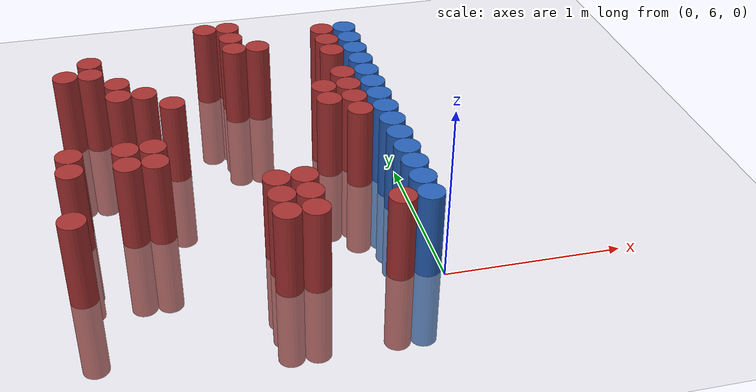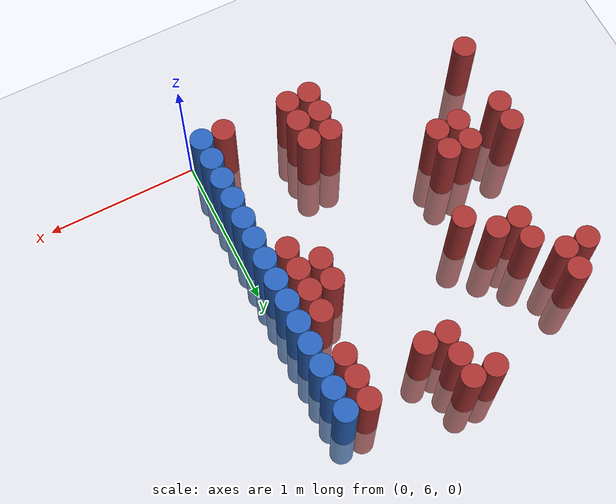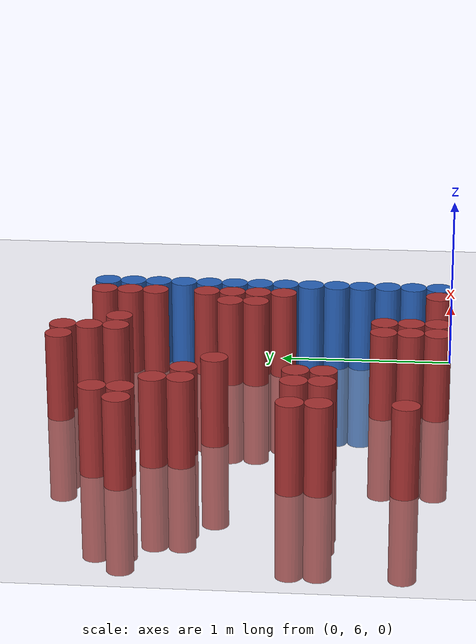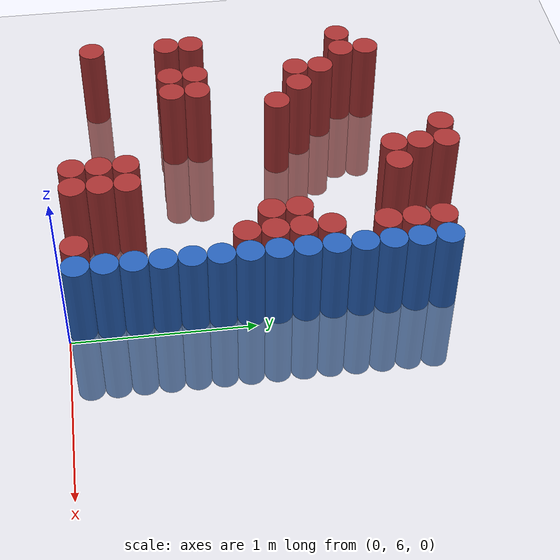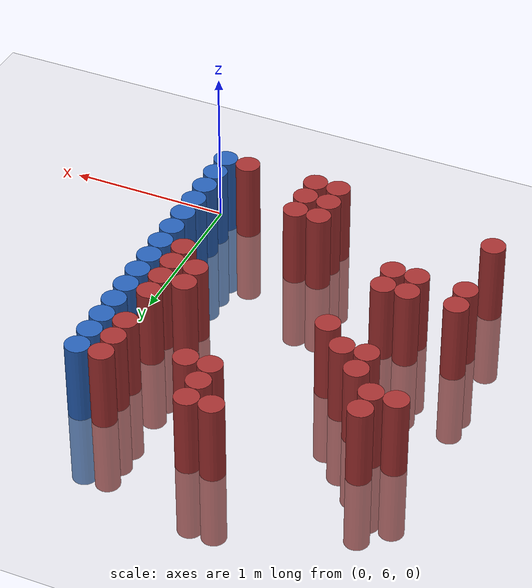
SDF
<sdf version="1.6">
 <world name="default">
  <model name="ground_plane">
   <static>1</static>
   <link name="link">
    <collision name="collision">
     <geometry><plane><normal>0 0 1</normal><size>100 100</size></plane></geometry>
     <surface><friction><ode><mu>100</mu><mu2>50</mu2></ode></friction></surface>
    </collision>
    <visual name="visual">
     <cast_shadows>0</cast_shadows>
     <geometry><plane><normal>0 0 1</normal><size>100 100</size></plane></geometry>
     <material>
      <script><uri>file://media/materials/scripts/gazebo.material</uri><name>Gazebo/Grey</name></script>
     </material>
    </visual>
   </link>
  </model>
  <model name="unit_cylinder_217">
   <static>1</static>
   <pose>-1.875000 6.225000 0.000000 0.000000 0.000000 0.000000</pose>
   <link name="link">
    <inertial>
     <mass>1</mass>
     <inertia><ixx>0.145833</ixx><ixy>0</ixy><ixz>0</ixz><iyy>0.145833</iyy><iyz>0</iyz><izz>0.125</izz></inertia>
    </inertial>
    <collision name="collision">
     <geometry><cylinder><radius>0.075000</radius><length>1</length></cylinder></geometry>
    </collision>
    <visual name="visual">
     <geometry><cylinder><radius>0.075000</radius><length>1</length></cylinder></geometry>
     <material>
      <ambient>0.648000 0.192000 0.192000 1</ambient>
      <diffuse>0.648000 0.192000 0.192000 1</diffuse>
     </material>
     <material>
      <script><name>Gazebo/Grey</name><uri>file://media/materials/scripts/gazebo.material</uri></script>
     </material>
    </visual>
   </link>
  </model>
  <model name="unit_cylinder_218">
   <static>1</static>
   <pose>-1.875000 6.675000 0.000000 0.000000 0.000000 0.000000</pose>
   <link name="link">
    <inertial>
     <mass>1</mass>
     <inertia><ixx>0.145833</ixx><ixy>0</ixy><ixz>0</ixz><iyy>0.145833</iyy><iyz>0</iyz><izz>0.125</izz></inertia>
    </inertial>
    <collision name="collision">
     <geometry><cylinder><radius>0.075000</radius><length>1</length></cylinder></geometry>
    </collision>
    <visual name="visual">
     <geometry><cylinder><radius>0.075000</radius><length>1</length></cylinder></geometry>
     <material>
      <ambient>0.648000 0.192000 0.192000 1</ambient>
      <diffuse>0.648000 0.192000 0.192000 1</diffuse>
     </material>
     <material>
      <script><name>Gazebo/Grey</name><uri>file://media/materials/scripts/gazebo.material</uri></script>
     </material>
    </visual>
   </link>
  </model>
  <model name="unit_cylinder_219">
   <static>1</static>
   <pose>-1.875000 6.825000 0.000000 0.000000 0.000000 0.000000</pose>
   <link name="link">
    <inertial>
     <mass>1</mass>
     <inertia><ixx>0.145833</ixx><ixy>0</ixy><ixz>0</ixz><iyy>0.145833</iyy><iyz>0</iyz><izz>0.125</izz></inertia>
    </inertial>
    <collision name="collision">
     <geometry><cylinder><radius>0.075000</radius><length>1</length></cylinder></geometry>
    </collision>
    <visual name="visual">
     <geometry><cylinder><radius>0.075000</radius><length>1</length></cylinder></geometry>
     <material>
      <ambient>0.648000 0.192000 0.192000 1</ambient>
      <diffuse>0.648000 0.192000 0.192000 1</diffuse>
     </material>
     <material>
      <script><name>Gazebo/Grey</name><uri>file://media/materials/scripts/gazebo.material</uri></script>
     </material>
    </visual>
   </link>
  </model>
  <model name="unit_cylinder_220">
   <static>1</static>
   <pose>-1.875000 7.725000 0.000000 0.000000 0.000000 0.000000</pose>
   <link name="link">
    <inertial>
     <mass>1</mass>
     <inertia><ixx>0.145833</ixx><ixy>0</ixy><ixz>0</ixz><iyy>0.145833</iyy><iyz>0</iyz><izz>0.125</izz></inertia>
    </inertial>
    <collision name="collision">
     <geometry><cylinder><radius>0.075000</radius><length>1</length></cylinder></geometry>
    </collision>
    <visual name="visual">
     <geometry><cylinder><radius>0.075000</radius><length>1</length></cylinder></geometry>
     <material>
      <ambient>0.648000 0.192000 0.192000 1</ambient>
      <diffuse>0.648000 0.192000 0.192000 1</diffuse>
     </material>
     <material>
      <script><name>Gazebo/Grey</name><uri>file://media/materials/scripts/gazebo.material</uri></script>
     </material>
    </visual>
   </link>
  </model>
  <model name="unit_cylinder_227">
   <static>1</static>
   <pose>-1.725000 7.725000 0.000000 0.000000 0.000000 0.000000</pose>
   <link name="link">
    <inertial>
     <mass>1</mass>
     <inertia><ixx>0.145833</ixx><ixy>0</ixy><ixz>0</ixz><iyy>0.145833</iyy><iyz>0</iyz><izz>0.125</izz></inertia>
    </inertial>
    <collision name="collision">
     <geometry><cylinder><radius>0.075000</radius><length>1</length></cylinder></geometry>
    </collision>
    <visual name="visual">
     <geometry><cylinder><radius>0.075000</radius><length>1</length></cylinder></geometry>
     <material>
      <ambient>0.648000 0.192000 0.192000 1</ambient>
      <diffuse>0.648000 0.192000 0.192000 1</diffuse>
     </material>
     <material>
      <script><name>Gazebo/Grey</name><uri>file://media/materials/scripts/gazebo.material</uri></script>
     </material>
    </visual>
   </link>
  </model>
  <model name="unit_cylinder_228">
   <static>1</static>
   <pose>-1.725000 7.875000 0.000000 0.000000 0.000000 0.000000</pose>
   <link name="link">
    <inertial>
     <mass>1</mass>
     <inertia><ixx>0.145833</ixx><ixy>0</ixy><ixz>0</ixz><iyy>0.145833</iyy><iyz>0</iyz><izz>0.125</izz></inertia>
    </inertial>
    <collision name="collision">
     <geometry><cylinder><radius>0.075000</radius><length>1</length></cylinder></geometry>
    </collision>
    <visual name="visual">
     <geometry><cylinder><radius>0.075000</radius><length>1</length></cylinder></geometry>
     <material>
      <ambient>0.648000 0.192000 0.192000 1</ambient>
      <diffuse>0.648000 0.192000 0.192000 1</diffuse>
     </material>
     <material>
      <script><name>Gazebo/Grey</name><uri>file://media/materials/scripts/gazebo.material</uri></script>
     </material>
    </visual>
   </link>
  </model>
  <model name="unit_cylinder_238">
   <static>1</static>
   <pose>-1.575000 6.675000 0.000000 0.000000 0.000000 0.000000</pose>
   <link name="link">
    <inertial>
     <mass>1</mass>
     <inertia><ixx>0.145833</ixx><ixy>0</ixy><ixz>0</ixz><iyy>0.145833</iyy><iyz>0</iyz><izz>0.125</izz></inertia>
    </inertial>
    <collision name="collision">
     <geometry><cylinder><radius>0.075000</radius><length>1</length></cylinder></geometry>
    </collision>
    <visual name="visual">
     <geometry><cylinder><radius>0.075000</radius><length>1</length></cylinder></geometry>
     <material>
      <ambient>0.648000 0.192000 0.192000 1</ambient>
      <diffuse>0.648000 0.192000 0.192000 1</diffuse>
     </material>
     <material>
      <script><name>Gazebo/Grey</name><uri>file://media/materials/scripts/gazebo.material</uri></script>
     </material>
    </visual>
   </link>
  </model>
  <model name="unit_cylinder_239">
   <static>1</static>
   <pose>-1.575000 6.825000 0.000000 0.000000 0.000000 0.000000</pose>
   <link name="link">
    <inertial>
     <mass>1</mass>
     <inertia><ixx>0.145833</ixx><ixy>0</ixy><ixz>0</ixz><iyy>0.145833</iyy><iyz>0</iyz><izz>0.125</izz></inertia>
    </inertial>
    <collision name="collision">
     <geometry><cylinder><radius>0.075000</radius><length>1</length></cylinder></geometry>
    </collision>
    <visual name="visual">
     <geometry><cylinder><radius>0.075000</radius><length>1</length></cylinder></geometry>
     <material>
      <ambient>0.648000 0.192000 0.192000 1</ambient>
      <diffuse>0.648000 0.192000 0.192000 1</diffuse>
     </material>
     <material>
      <script><name>Gazebo/Grey</name><uri>file://media/materials/scripts/gazebo.material</uri></script>
     </material>
    </visual>
   </link>
  </model>
  <model name="unit_cylinder_240">
   <static>1</static>
   <pose>-1.575000 7.425000 0.000000 0.000000 0.000000 0.000000</pose>
   <link name="link">
    <inertial>
     <mass>1</mass>
     <inertia><ixx>0.145833</ixx><ixy>0</ixy><ixz>0</ixz><iyy>0.145833</iyy><iyz>0</iyz><izz>0.125</izz></inertia>
    </inertial>
    <collision name="collision">
     <geometry><cylinder><radius>0.075000</radius><length>1</length></cylinder></geometry>
    </collision>
    <visual name="visual">
     <geometry><cylinder><radius>0.075000</radius><length>1</length></cylinder></geometry>
     <material>
      <ambient>0.648000 0.192000 0.192000 1</ambient>
      <diffuse>0.648000 0.192000 0.192000 1</diffuse>
     </material>
     <material>
      <script><name>Gazebo/Grey</name><uri>file://media/materials/scripts/gazebo.material</uri></script>
     </material>
    </visual>
   </link>
  </model>
  <model name="unit_cylinder_241">
   <static>1</static>
   <pose>-1.575000 7.575000 0.000000 0.000000 0.000000 0.000000</pose>
   <link name="link">
    <inertial>
     <mass>1</mass>
     <inertia><ixx>0.145833</ixx><ixy>0</ixy><ixz>0</ixz><iyy>0.145833</iyy><iyz>0</iyz><izz>0.125</izz></inertia>
    </inertial>
    <collision name="collision">
     <geometry><cylinder><radius>0.075000</radius><length>1</length></cylinder></geometry>
    </collision>
    <visual name="visual">
     <geometry><cylinder><radius>0.075000</radius><length>1</length></cylinder></geometry>
     <material>
      <ambient>0.648000 0.192000 0.192000 1</ambient>
      <diffuse>0.648000 0.192000 0.192000 1</diffuse>
     </material>
     <material>
      <script><name>Gazebo/Grey</name><uri>file://media/materials/scripts/gazebo.material</uri></script>
     </material>
    </visual>
   </link>
  </model>
  <model name="unit_cylinder_245">
   <static>1</static>
   <pose>-1.425000 6.675000 0.000000 0.000000 0.000000 0.000000</pose>
   <link name="link">
    <inertial>
     <mass>1</mass>
     <inertia><ixx>0.145833</ixx><ixy>0</ixy><ixz>0</ixz><iyy>0.145833</iyy><iyz>0</iyz><izz>0.125</izz></inertia>
    </inertial>
    <collision name="collision">
     <geometry><cylinder><radius>0.075000</radius><length>1</length></cylinder></geometry>
    </collision>
    <visual name="visual">
     <geometry><cylinder><radius>0.075000</radius><length>1</length></cylinder></geometry>
     <material>
      <ambient>0.648000 0.192000 0.192000 1</ambient>
      <diffuse>0.648000 0.192000 0.192000 1</diffuse>
     </material>
     <material>
      <script><name>Gazebo/Grey</name><uri>file://media/materials/scripts/gazebo.material</uri></script>
     </material>
    </visual>
   </link>
  </model>
  <model name="unit_cylinder_246">
   <static>1</static>
   <pose>-1.425000 6.825000 0.000000 0.000000 0.000000 0.000000</pose>
   <link name="link">
    <inertial>
     <mass>1</mass>
     <inertia><ixx>0.145833</ixx><ixy>0</ixy><ixz>0</ixz><iyy>0.145833</iyy><iyz>0</iyz><izz>0.125</izz></inertia>
    </inertial>
    <collision name="collision">
     <geometry><cylinder><radius>0.075000</radius><length>1</length></cylinder></geometry>
    </collision>
    <visual name="visual">
     <geometry><cylinder><radius>0.075000</radius><length>1</length></cylinder></geometry>
     <material>
      <ambient>0.648000 0.192000 0.192000 1</ambient>
      <diffuse>0.648000 0.192000 0.192000 1</diffuse>
     </material>
     <material>
      <script><name>Gazebo/Grey</name><uri>file://media/materials/scripts/gazebo.material</uri></script>
     </material>
    </visual>
   </link>
  </model>
  <model name="unit_cylinder_247">
   <static>1</static>
   <pose>-1.425000 7.425000 0.000000 0.000000 0.000000 0.000000</pose>
   <link name="link">
    <inertial>
     <mass>1</mass>
     <inertia><ixx>0.145833</ixx><ixy>0</ixy><ixz>0</ixz><iyy>0.145833</iyy><iyz>0</iyz><izz>0.125</izz></inertia>
    </inertial>
    <collision name="collision">
     <geometry><cylinder><radius>0.075000</radius><length>1</length></cylinder></geometry>
    </collision>
    <visual name="visual">
     <geometry><cylinder><radius>0.075000</radius><length>1</length></cylinder></geometry>
     <material>
      <ambient>0.648000 0.192000 0.192000 1</ambient>
      <diffuse>0.648000 0.192000 0.192000 1</diffuse>
     </material>
     <material>
      <script><name>Gazebo/Grey</name><uri>file://media/materials/scripts/gazebo.material</uri></script>
     </material>
    </visual>
   </link>
  </model>
  <model name="unit_cylinder_252">
   <static>1</static>
   <pose>-1.275000 7.275000 0.000000 0.000000 0.000000 0.000000</pose>
   <link name="link">
    <inertial>
     <mass>1</mass>
     <inertia><ixx>0.145833</ixx><ixy>0</ixy><ixz>0</ixz><iyy>0.145833</iyy><iyz>0</iyz><izz>0.125</izz></inertia>
    </inertial>
    <collision name="collision">
     <geometry><cylinder><radius>0.075000</radius><length>1</length></cylinder></geometry>
    </collision>
    <visual name="visual">
     <geometry><cylinder><radius>0.075000</radius><length>1</length></cylinder></geometry>
     <material>
      <ambient>0.648000 0.192000 0.192000 1</ambient>
      <diffuse>0.648000 0.192000 0.192000 1</diffuse>
     </material>
     <material>
      <script><name>Gazebo/Grey</name><uri>file://media/materials/scripts/gazebo.material</uri></script>
     </material>
    </visual>
   </link>
  </model>
  <model name="unit_cylinder_263">
   <static>1</static>
   <pose>-0.975000 8.175000 0.000000 0.000000 0.000000 0.000000</pose>
   <link name="link">
    <inertial>
     <mass>1</mass>
     <inertia><ixx>0.145833</ixx><ixy>0</ixy><ixz>0</ixz><iyy>0.145833</iyy><iyz>0</iyz><izz>0.125</izz></inertia>
    </inertial>
    <collision name="collision">
     <geometry><cylinder><radius>0.075000</radius><length>1</length></cylinder></geometry>
    </collision>
    <visual name="visual">
     <geometry><cylinder><radius>0.075000</radius><length>1</length></cylinder></geometry>
     <material>
      <ambient>0.648000 0.192000 0.192000 1</ambient>
      <diffuse>0.648000 0.192000 0.192000 1</diffuse>
     </material>
     <material>
      <script><name>Gazebo/Grey</name><uri>file://media/materials/scripts/gazebo.material</uri></script>
     </material>
    </visual>
   </link>
  </model>
  <model name="unit_cylinder_268">
   <static>1</static>
   <pose>-0.825000 6.075000 0.000000 0.000000 0.000000 0.000000</pose>
   <link name="link">
    <inertial>
     <mass>1</mass>
     <inertia><ixx>0.145833</ixx><ixy>0</ixy><ixz>0</ixz><iyy>0.145833</iyy><iyz>0</iyz><izz>0.125</izz></inertia>
    </inertial>
    <collision name="collision">
     <geometry><cylinder><radius>0.075000</radius><length>1</length></cylinder></geometry>
    </collision>
    <visual name="visual">
     <geometry><cylinder><radius>0.075000</radius><length>1</length></cylinder></geometry>
     <material>
      <ambient>0.648000 0.192000 0.192000 1</ambient>
      <diffuse>0.648000 0.192000 0.192000 1</diffuse>
     </material>
     <material>
      <script><name>Gazebo/Grey</name><uri>file://media/materials/scripts/gazebo.material</uri></script>
     </material>
    </visual>
   </link>
  </model>
  <model name="unit_cylinder_269">
   <static>1</static>
   <pose>-0.825000 6.225000 0.000000 0.000000 0.000000 0.000000</pose>
   <link name="link">
    <inertial>
     <mass>1</mass>
     <inertia><ixx>0.145833</ixx><ixy>0</ixy><ixz>0</ixz><iyy>0.145833</iyy><iyz>0</iyz><izz>0.125</izz></inertia>
    </inertial>
    <collision name="collision">
     <geometry><cylinder><radius>0.075000</radius><length>1</length></cylinder></geometry>
    </collision>
    <visual name="visual">
     <geometry><cylinder><radius>0.075000</radius><length>1</length></cylinder></geometry>
     <material>
      <ambient>0.648000 0.192000 0.192000 1</ambient>
      <diffuse>0.648000 0.192000 0.192000 1</diffuse>
     </material>
     <material>
      <script><name>Gazebo/Grey</name><uri>file://media/materials/scripts/gazebo.material</uri></script>
     </material>
    </visual>
   </link>
  </model>
  <model name="unit_cylinder_270">
   <static>1</static>
   <pose>-0.825000 6.375000 0.000000 0.000000 0.000000 0.000000</pose>
   <link name="link">
    <inertial>
     <mass>1</mass>
     <inertia><ixx>0.145833</ixx><ixy>0</ixy><ixz>0</ixz><iyy>0.145833</iyy><iyz>0</iyz><izz>0.125</izz></inertia>
    </inertial>
    <collision name="collision">
     <geometry><cylinder><radius>0.075000</radius><length>1</length></cylinder></geometry>
    </collision>
    <visual name="visual">
     <geometry><cylinder><radius>0.075000</radius><length>1</length></cylinder></geometry>
     <material>
      <ambient>0.648000 0.192000 0.192000 1</ambient>
      <diffuse>0.648000 0.192000 0.192000 1</diffuse>
     </material>
     <material>
      <script><name>Gazebo/Grey</name><uri>file://media/materials/scripts/gazebo.material</uri></script>
     </material>
    </visual>
   </link>
  </model>
  <model name="unit_cylinder_271">
   <static>1</static>
   <pose>-0.825000 7.875000 0.000000 0.000000 0.000000 0.000000</pose>
   <link name="link">
    <inertial>
     <mass>1</mass>
     <inertia><ixx>0.145833</ixx><ixy>0</ixy><ixz>0</ixz><iyy>0.145833</iyy><iyz>0</iyz><izz>0.125</izz></inertia>
    </inertial>
    <collision name="collision">
     <geometry><cylinder><radius>0.075000</radius><length>1</length></cylinder></geometry>
    </collision>
    <visual name="visual">
     <geometry><cylinder><radius>0.075000</radius><length>1</length></cylinder></geometry>
     <material>
      <ambient>0.648000 0.192000 0.192000 1</ambient>
      <diffuse>0.648000 0.192000 0.192000 1</diffuse>
     </material>
     <material>
      <script><name>Gazebo/Grey</name><uri>file://media/materials/scripts/gazebo.material</uri></script>
     </material>
    </visual>
   </link>
  </model>
  <model name="unit_cylinder_272">
   <static>1</static>
   <pose>-0.825000 8.025000 0.000000 0.000000 0.000000 0.000000</pose>
   <link name="link">
    <inertial>
     <mass>1</mass>
     <inertia><ixx>0.145833</ixx><ixy>0</ixy><ixz>0</ixz><iyy>0.145833</iyy><iyz>0</iyz><izz>0.125</izz></inertia>
    </inertial>
    <collision name="collision">
     <geometry><cylinder><radius>0.075000</radius><length>1</length></cylinder></geometry>
    </collision>
    <visual name="visual">
     <geometry><cylinder><radius>0.075000</radius><length>1</length></cylinder></geometry>
     <material>
      <ambient>0.648000 0.192000 0.192000 1</ambient>
      <diffuse>0.648000 0.192000 0.192000 1</diffuse>
     </material>
     <material>
      <script><name>Gazebo/Grey</name><uri>file://media/materials/scripts/gazebo.material</uri></script>
     </material>
    </visual>
   </link>
  </model>
  <model name="unit_cylinder_273">
   <static>1</static>
   <pose>-0.825000 8.175000 0.000000 0.000000 0.000000 0.000000</pose>
   <link name="link">
    <inertial>
     <mass>1</mass>
     <inertia><ixx>0.145833</ixx><ixy>0</ixy><ixz>0</ixz><iyy>0.145833</iyy><iyz>0</iyz><izz>0.125</izz></inertia>
    </inertial>
    <collision name="collision">
     <geometry><cylinder><radius>0.075000</radius><length>1</length></cylinder></geometry>
    </collision>
    <visual name="visual">
     <geometry><cylinder><radius>0.075000</radius><length>1</length></cylinder></geometry>
     <material>
      <ambient>0.648000 0.192000 0.192000 1</ambient>
      <diffuse>0.648000 0.192000 0.192000 1</diffuse>
     </material>
     <material>
      <script><name>Gazebo/Grey</name><uri>file://media/materials/scripts/gazebo.material</uri></script>
     </material>
    </visual>
   </link>
  </model>
  <model name="unit_cylinder_277">
   <static>1</static>
   <pose>-0.675000 6.075000 0.000000 0.000000 0.000000 0.000000</pose>
   <link name="link">
    <inertial>
     <mass>1</mass>
     <inertia><ixx>0.145833</ixx><ixy>0</ixy><ixz>0</ixz><iyy>0.145833</iyy><iyz>0</iyz><izz>0.125</izz></inertia>
    </inertial>
    <collision name="collision">
     <geometry><cylinder><radius>0.075000</radius><length>1</length></cylinder></geometry>
    </collision>
    <visual name="visual">
     <geometry><cylinder><radius>0.075000</radius><length>1</length></cylinder></geometry>
     <material>
      <ambient>0.648000 0.192000 0.192000 1</ambient>
      <diffuse>0.648000 0.192000 0.192000 1</diffuse>
     </material>
     <material>
      <script><name>Gazebo/Grey</name><uri>file://media/materials/scripts/gazebo.material</uri></script>
     </material>
    </visual>
   </link>
  </model>
  <model name="unit_cylinder_278">
   <static>1</static>
   <pose>-0.675000 6.225000 0.000000 0.000000 0.000000 0.000000</pose>
   <link name="link">
    <inertial>
     <mass>1</mass>
     <inertia><ixx>0.145833</ixx><ixy>0</ixy><ixz>0</ixz><iyy>0.145833</iyy><iyz>0</iyz><izz>0.125</izz></inertia>
    </inertial>
    <collision name="collision">
     <geometry><cylinder><radius>0.075000</radius><length>1</length></cylinder></geometry>
    </collision>
    <visual name="visual">
     <geometry><cylinder><radius>0.075000</radius><length>1</length></cylinder></geometry>
     <material>
      <ambient>0.648000 0.192000 0.192000 1</ambient>
      <diffuse>0.648000 0.192000 0.192000 1</diffuse>
     </material>
     <material>
      <script><name>Gazebo/Grey</name><uri>file://media/materials/scripts/gazebo.material</uri></script>
     </material>
    </visual>
   </link>
  </model>
  <model name="unit_cylinder_279">
   <static>1</static>
   <pose>-0.675000 6.375000 0.000000 0.000000 0.000000 0.000000</pose>
   <link name="link">
    <inertial>
     <mass>1</mass>
     <inertia><ixx>0.145833</ixx><ixy>0</ixy><ixz>0</ixz><iyy>0.145833</iyy><iyz>0</iyz><izz>0.125</izz></inertia>
    </inertial>
    <collision name="collision">
     <geometry><cylinder><radius>0.075000</radius><length>1</length></cylinder></geometry>
    </collision>
    <visual name="visual">
     <geometry><cylinder><radius>0.075000</radius><length>1</length></cylinder></geometry>
     <material>
      <ambient>0.648000 0.192000 0.192000 1</ambient>
      <diffuse>0.648000 0.192000 0.192000 1</diffuse>
     </material>
     <material>
      <script><name>Gazebo/Grey</name><uri>file://media/materials/scripts/gazebo.material</uri></script>
     </material>
    </visual>
   </link>
  </model>
  <model name="unit_cylinder_280">
   <static>1</static>
   <pose>-0.675000 7.875000 0.000000 0.000000 0.000000 0.000000</pose>
   <link name="link">
    <inertial>
     <mass>1</mass>
     <inertia><ixx>0.145833</ixx><ixy>0</ixy><ixz>0</ixz><iyy>0.145833</iyy><iyz>0</iyz><izz>0.125</izz></inertia>
    </inertial>
    <collision name="collision">
     <geometry><cylinder><radius>0.075000</radius><length>1</length></cylinder></geometry>
    </collision>
    <visual name="visual">
     <geometry><cylinder><radius>0.075000</radius><length>1</length></cylinder></geometry>
     <material>
      <ambient>0.648000 0.192000 0.192000 1</ambient>
      <diffuse>0.648000 0.192000 0.192000 1</diffuse>
     </material>
     <material>
      <script><name>Gazebo/Grey</name><uri>file://media/materials/scripts/gazebo.material</uri></script>
     </material>
    </visual>
   </link>
  </model>
  <model name="unit_cylinder_284">
   <static>1</static>
   <pose>-0.375000 7.125000 0.000000 0.000000 0.000000 0.000000</pose>
   <link name="link">
    <inertial>
     <mass>1</mass>
     <inertia><ixx>0.145833</ixx><ixy>0</ixy><ixz>0</ixz><iyy>0.145833</iyy><iyz>0</iyz><izz>0.125</izz></inertia>
    </inertial>
    <collision name="collision">
     <geometry><cylinder><radius>0.075000</radius><length>1</length></cylinder></geometry>
    </collision>
    <visual name="visual">
     <geometry><cylinder><radius>0.075000</radius><length>1</length></cylinder></geometry>
     <material>
      <ambient>0.648000 0.192000 0.192000 1</ambient>
      <diffuse>0.648000 0.192000 0.192000 1</diffuse>
     </material>
     <material>
      <script><name>Gazebo/Grey</name><uri>file://media/materials/scripts/gazebo.material</uri></script>
     </material>
    </visual>
   </link>
  </model>
  <model name="unit_cylinder_285">
   <static>1</static>
   <pose>-0.375000 7.275000 0.000000 0.000000 0.000000 0.000000</pose>
   <link name="link">
    <inertial>
     <mass>1</mass>
     <inertia><ixx>0.145833</ixx><ixy>0</ixy><ixz>0</ixz><iyy>0.145833</iyy><iyz>0</iyz><izz>0.125</izz></inertia>
    </inertial>
    <collision name="collision">
     <geometry><cylinder><radius>0.075000</radius><length>1</length></cylinder></geometry>
    </collision>
    <visual name="visual">
     <geometry><cylinder><radius>0.075000</radius><length>1</length></cylinder></geometry>
     <material>
      <ambient>0.648000 0.192000 0.192000 1</ambient>
      <diffuse>0.648000 0.192000 0.192000 1</diffuse>
     </material>
     <material>
      <script><name>Gazebo/Grey</name><uri>file://media/materials/scripts/gazebo.material</uri></script>
     </material>
    </visual>
   </link>
  </model>
  <model name="unit_cylinder_296">
   <static>1</static>
   <pose>-0.225000 6.075000 0.000000 0.000000 0.000000 0.000000</pose>
   <link name="link">
    <inertial>
     <mass>1</mass>
     <inertia><ixx>0.145833</ixx><ixy>0</ixy><ixz>0</ixz><iyy>0.145833</iyy><iyz>0</iyz><izz>0.125</izz></inertia>
    </inertial>
    <collision name="collision">
     <geometry><cylinder><radius>0.075000</radius><length>1</length></cylinder></geometry>
    </collision>
    <visual name="visual">
     <geometry><cylinder><radius>0.075000</radius><length>1</length></cylinder></geometry>
     <material>
      <ambient>0.648000 0.192000 0.192000 1</ambient>
      <diffuse>0.648000 0.192000 0.192000 1</diffuse>
     </material>
     <material>
      <script><name>Gazebo/Grey</name><uri>file://media/materials/scripts/gazebo.material</uri></script>
     </material>
    </visual>
   </link>
  </model>
  <model name="unit_cylinder_297">
   <static>1</static>
   <pose>-0.225000 6.975000 0.000000 0.000000 0.000000 0.000000</pose>
   <link name="link">
    <inertial>
     <mass>1</mass>
     <inertia><ixx>0.145833</ixx><ixy>0</ixy><ixz>0</ixz><iyy>0.145833</iyy><iyz>0</iyz><izz>0.125</izz></inertia>
    </inertial>
    <collision name="collision">
     <geometry><cylinder><radius>0.075000</radius><length>1</length></cylinder></geometry>
    </collision>
    <visual name="visual">
     <geometry><cylinder><radius>0.075000</radius><length>1</length></cylinder></geometry>
     <material>
      <ambient>0.648000 0.192000 0.192000 1</ambient>
      <diffuse>0.648000 0.192000 0.192000 1</diffuse>
     </material>
     <material>
      <script><name>Gazebo/Grey</name><uri>file://media/materials/scripts/gazebo.material</uri></script>
     </material>
    </visual>
   </link>
  </model>
  <model name="unit_cylinder_298">
   <static>1</static>
   <pose>-0.225000 7.125000 0.000000 0.000000 0.000000 0.000000</pose>
   <link name="link">
    <inertial>
     <mass>1</mass>
     <inertia><ixx>0.145833</ixx><ixy>0</ixy><ixz>0</ixz><iyy>0.145833</iyy><iyz>0</iyz><izz>0.125</izz></inertia>
    </inertial>
    <collision name="collision">
     <geometry><cylinder><radius>0.075000</radius><length>1</length></cylinder></geometry>
    </collision>
    <visual name="visual">
     <geometry><cylinder><radius>0.075000</radius><length>1</length></cylinder></geometry>
     <material>
      <ambient>0.648000 0.192000 0.192000 1</ambient>
      <diffuse>0.648000 0.192000 0.192000 1</diffuse>
     </material>
     <material>
      <script><name>Gazebo/Grey</name><uri>file://media/materials/scripts/gazebo.material</uri></script>
     </material>
    </visual>
   </link>
  </model>
  <model name="unit_cylinder_299">
   <static>1</static>
   <pose>-0.225000 7.275000 0.000000 0.000000 0.000000 0.000000</pose>
   <link name="link">
    <inertial>
     <mass>1</mass>
     <inertia><ixx>0.145833</ixx><ixy>0</ixy><ixz>0</ixz><iyy>0.145833</iyy><iyz>0</iyz><izz>0.125</izz></inertia>
    </inertial>
    <collision name="collision">
     <geometry><cylinder><radius>0.075000</radius><length>1</length></cylinder></geometry>
    </collision>
    <visual name="visual">
     <geometry><cylinder><radius>0.075000</radius><length>1</length></cylinder></geometry>
     <material>
      <ambient>0.648000 0.192000 0.192000 1</ambient>
      <diffuse>0.648000 0.192000 0.192000 1</diffuse>
     </material>
     <material>
      <script><name>Gazebo/Grey</name><uri>file://media/materials/scripts/gazebo.material</uri></script>
     </material>
    </visual>
   </link>
  </model>
  <model name="unit_cylinder_300">
   <static>1</static>
   <pose>-0.225000 7.425000 0.000000 0.000000 0.000000 0.000000</pose>
   <link name="link">
    <inertial>
     <mass>1</mass>
     <inertia><ixx>0.145833</ixx><ixy>0</ixy><ixz>0</ixz><iyy>0.145833</iyy><iyz>0</iyz><izz>0.125</izz></inertia>
    </inertial>
    <collision name="collision">
     <geometry><cylinder><radius>0.075000</radius><length>1</length></cylinder></geometry>
    </collision>
    <visual name="visual">
     <geometry><cylinder><radius>0.075000</radius><length>1</length></cylinder></geometry>
     <material>
      <ambient>0.648000 0.192000 0.192000 1</ambient>
      <diffuse>0.648000 0.192000 0.192000 1</diffuse>
     </material>
     <material>
      <script><name>Gazebo/Grey</name><uri>file://media/materials/scripts/gazebo.material</uri></script>
     </material>
    </visual>
   </link>
  </model>
  <model name="unit_cylinder_301">
   <static>1</static>
   <pose>-0.225000 7.725000 0.000000 0.000000 0.000000 0.000000</pose>
   <link name="link">
    <inertial>
     <mass>1</mass>
     <inertia><ixx>0.145833</ixx><ixy>0</ixy><ixz>0</ixz><iyy>0.145833</iyy><iyz>0</iyz><izz>0.125</izz></inertia>
    </inertial>
    <collision name="collision">
     <geometry><cylinder><radius>0.075000</radius><length>1</length></cylinder></geometry>
    </collision>
    <visual name="visual">
     <geometry><cylinder><radius>0.075000</radius><length>1</length></cylinder></geometry>
     <material>
      <ambient>0.648000 0.192000 0.192000 1</ambient>
      <diffuse>0.648000 0.192000 0.192000 1</diffuse>
     </material>
     <material>
      <script><name>Gazebo/Grey</name><uri>file://media/materials/scripts/gazebo.material</uri></script>
     </material>
    </visual>
   </link>
  </model>
  <model name="unit_cylinder_302">
   <static>1</static>
   <pose>-0.225000 7.875000 0.000000 0.000000 0.000000 0.000000</pose>
   <link name="link">
    <inertial>
     <mass>1</mass>
     <inertia><ixx>0.145833</ixx><ixy>0</ixy><ixz>0</ixz><iyy>0.145833</iyy><iyz>0</iyz><izz>0.125</izz></inertia>
    </inertial>
    <collision name="collision">
     <geometry><cylinder><radius>0.075000</radius><length>1</length></cylinder></geometry>
    </collision>
    <visual name="visual">
     <geometry><cylinder><radius>0.075000</radius><length>1</length></cylinder></geometry>
     <material>
      <ambient>0.648000 0.192000 0.192000 1</ambient>
      <diffuse>0.648000 0.192000 0.192000 1</diffuse>
     </material>
     <material>
      <script><name>Gazebo/Grey</name><uri>file://media/materials/scripts/gazebo.material</uri></script>
     </material>
    </visual>
   </link>
  </model>
  <model name="unit_cylinder_303">
   <static>1</static>
   <pose>-0.225000 8.025000 0.000000 0.000000 0.000000 0.000000</pose>
   <link name="link">
    <inertial>
     <mass>1</mass>
     <inertia><ixx>0.145833</ixx><ixy>0</ixy><ixz>0</ixz><iyy>0.145833</iyy><iyz>0</iyz><izz>0.125</izz></inertia>
    </inertial>
    <collision name="collision">
     <geometry><cylinder><radius>0.075000</radius><length>1</length></cylinder></geometry>
    </collision>
    <visual name="visual">
     <geometry><cylinder><radius>0.075000</radius><length>1</length></cylinder></geometry>
     <material>
      <ambient>0.648000 0.192000 0.192000 1</ambient>
      <diffuse>0.648000 0.192000 0.192000 1</diffuse>
     </material>
     <material>
      <script><name>Gazebo/Grey</name><uri>file://media/materials/scripts/gazebo.material</uri></script>
     </material>
    </visual>
   </link>
  </model>
  <model name="unit_cylinder_317">
   <static>1</static>
   <pose>-0.075000 6.075000 0.000000 0.000000 0.000000 0.000000</pose>
   <link name="link">
    <inertial>
     <mass>1</mass>
     <inertia><ixx>0.145833</ixx><ixy>0</ixy><ixz>0</ixz><iyy>0.145833</iyy><iyz>0</iyz><izz>0.125</izz></inertia>
    </inertial>
    <collision name="collision">
     <geometry><cylinder><radius>0.075000</radius><length>1</length></cylinder></geometry>
    </collision>
    <visual name="visual">
     <geometry><cylinder><radius>0.075000</radius><length>1</length></cylinder></geometry>
     <material>
      <ambient>0.152000 0.379000 0.720000 1</ambient>
      <diffuse>0.152000 0.379000 0.720000 1</diffuse>
     </material>
     <material>
      <script><name>Gazebo/Grey</name><uri>file://media/materials/scripts/gazebo.material</uri></script>
     </material>
    </visual>
   </link>
  </model>
  <model name="unit_cylinder_318">
   <static>1</static>
   <pose>-0.075000 6.225000 0.000000 0.000000 0.000000 0.000000</pose>
   <link name="link">
    <inertial>
     <mass>1</mass>
     <inertia><ixx>0.145833</ixx><ixy>0</ixy><ixz>0</ixz><iyy>0.145833</iyy><iyz>0</iyz><izz>0.125</izz></inertia>
    </inertial>
    <collision name="collision">
     <geometry><cylinder><radius>0.075000</radius><length>1</length></cylinder></geometry>
    </collision>
    <visual name="visual">
     <geometry><cylinder><radius>0.075000</radius><length>1</length></cylinder></geometry>
     <material>
      <ambient>0.152000 0.379000 0.720000 1</ambient>
      <diffuse>0.152000 0.379000 0.720000 1</diffuse>
     </material>
     <material>
      <script><name>Gazebo/Grey</name><uri>file://media/materials/scripts/gazebo.material</uri></script>
     </material>
    </visual>
   </link>
  </model>
  <model name="unit_cylinder_319">
   <static>1</static>
   <pose>-0.075000 6.375000 0.000000 0.000000 0.000000 0.000000</pose>
   <link name="link">
    <inertial>
     <mass>1</mass>
     <inertia><ixx>0.145833</ixx><ixy>0</ixy><ixz>0</ixz><iyy>0.145833</iyy><iyz>0</iyz><izz>0.125</izz></inertia>
    </inertial>
    <collision name="collision">
     <geometry><cylinder><radius>0.075000</radius><length>1</length></cylinder></geometry>
    </collision>
    <visual name="visual">
     <geometry><cylinder><radius>0.075000</radius><length>1</length></cylinder></geometry>
     <material>
      <ambient>0.152000 0.379000 0.720000 1</ambient>
      <diffuse>0.152000 0.379000 0.720000 1</diffuse>
     </material>
     <material>
      <script><name>Gazebo/Grey</name><uri>file://media/materials/scripts/gazebo.material</uri></script>
     </material>
    </visual>
   </link>
  </model>
  <model name="unit_cylinder_320">
   <static>1</static>
   <pose>-0.075000 6.525000 0.000000 0.000000 0.000000 0.000000</pose>
   <link name="link">
    <inertial>
     <mass>1</mass>
     <inertia><ixx>0.145833</ixx><ixy>0</ixy><ixz>0</ixz><iyy>0.145833</iyy><iyz>0</iyz><izz>0.125</izz></inertia>
    </inertial>
    <collision name="collision">
     <geometry><cylinder><radius>0.075000</radius><length>1</length></cylinder></geometry>
    </collision>
    <visual name="visual">
     <geometry><cylinder><radius>0.075000</radius><length>1</length></cylinder></geometry>
     <material>
      <ambient>0.152000 0.379000 0.720000 1</ambient>
      <diffuse>0.152000 0.379000 0.720000 1</diffuse>
     </material>
     <material>
      <script><name>Gazebo/Grey</name><uri>file://media/materials/scripts/gazebo.material</uri></script>
     </material>
    </visual>
   </link>
  </model>
  <model name="unit_cylinder_321">
   <static>1</static>
   <pose>-0.075000 6.675000 0.000000 0.000000 0.000000 0.000000</pose>
   <link name="link">
    <inertial>
     <mass>1</mass>
     <inertia><ixx>0.145833</ixx><ixy>0</ixy><ixz>0</ixz><iyy>0.145833</iyy><iyz>0</iyz><izz>0.125</izz></inertia>
    </inertial>
    <collision name="collision">
     <geometry><cylinder><radius>0.075000</radius><length>1</length></cylinder></geometry>
    </collision>
    <visual name="visual">
     <geometry><cylinder><radius>0.075000</radius><length>1</length></cylinder></geometry>
     <material>
      <ambient>0.152000 0.379000 0.720000 1</ambient>
      <diffuse>0.152000 0.379000 0.720000 1</diffuse>
     </material>
     <material>
      <script><name>Gazebo/Grey</name><uri>file://media/materials/scripts/gazebo.material</uri></script>
     </material>
    </visual>
   </link>
  </model>
  <model name="unit_cylinder_322">
   <static>1</static>
   <pose>-0.075000 6.825000 0.000000 0.000000 0.000000 0.000000</pose>
   <link name="link">
    <inertial>
     <mass>1</mass>
     <inertia><ixx>0.145833</ixx><ixy>0</ixy><ixz>0</ixz><iyy>0.145833</iyy><iyz>0</iyz><izz>0.125</izz></inertia>
    </inertial>
    <collision name="collision">
     <geometry><cylinder><radius>0.075000</radius><length>1</length></cylinder></geometry>
    </collision>
    <visual name="visual">
     <geometry><cylinder><radius>0.075000</radius><length>1</length></cylinder></geometry>
     <material>
      <ambient>0.152000 0.379000 0.720000 1</ambient>
      <diffuse>0.152000 0.379000 0.720000 1</diffuse>
     </material>
     <material>
      <script><name>Gazebo/Grey</name><uri>file://media/materials/scripts/gazebo.material</uri></script>
     </material>
    </visual>
   </link>
  </model>
  <model name="unit_cylinder_323">
   <static>1</static>
   <pose>-0.075000 6.975000 0.000000 0.000000 0.000000 0.000000</pose>
   <link name="link">
    <inertial>
     <mass>1</mass>
     <inertia><ixx>0.145833</ixx><ixy>0</ixy><ixz>0</ixz><iyy>0.145833</iyy><iyz>0</iyz><izz>0.125</izz></inertia>
    </inertial>
    <collision name="collision">
     <geometry><cylinder><radius>0.075000</radius><length>1</length></cylinder></geometry>
    </collision>
    <visual name="visual">
     <geometry><cylinder><radius>0.075000</radius><length>1</length></cylinder></geometry>
     <material>
      <ambient>0.152000 0.379000 0.720000 1</ambient>
      <diffuse>0.152000 0.379000 0.720000 1</diffuse>
     </material>
     <material>
      <script><name>Gazebo/Grey</name><uri>file://media/materials/scripts/gazebo.material</uri></script>
     </material>
    </visual>
   </link>
  </model>
  <model name="unit_cylinder_324">
   <static>1</static>
   <pose>-0.075000 7.125000 0.000000 0.000000 0.000000 0.000000</pose>
   <link name="link">
    <inertial>
     <mass>1</mass>
     <inertia><ixx>0.145833</ixx><ixy>0</ixy><ixz>0</ixz><iyy>0.145833</iyy><iyz>0</iyz><izz>0.125</izz></inertia>
    </inertial>
    <collision name="collision">
     <geometry><cylinder><radius>0.075000</radius><length>1</length></cylinder></geometry>
    </collision>
    <visual name="visual">
     <geometry><cylinder><radius>0.075000</radius><length>1</length></cylinder></geometry>
     <material>
      <ambient>0.152000 0.379000 0.720000 1</ambient>
      <diffuse>0.152000 0.379000 0.720000 1</diffuse>
     </material>
     <material>
      <script><name>Gazebo/Grey</name><uri>file://media/materials/scripts/gazebo.material</uri></script>
     </material>
    </visual>
   </link>
  </model>
  <model name="unit_cylinder_325">
   <static>1</static>
   <pose>-0.075000 7.275000 0.000000 0.000000 0.000000 0.000000</pose>
   <link name="link">
    <inertial>
     <mass>1</mass>
     <inertia><ixx>0.145833</ixx><ixy>0</ixy><ixz>0</ixz><iyy>0.145833</iyy><iyz>0</iyz><izz>0.125</izz></inertia>
    </inertial>
    <collision name="collision">
     <geometry><cylinder><radius>0.075000</radius><length>1</length></cylinder></geometry>
    </collision>
    <visual name="visual">
     <geometry><cylinder><radius>0.075000</radius><length>1</length></cylinder></geometry>
     <material>
      <ambient>0.152000 0.379000 0.720000 1</ambient>
      <diffuse>0.152000 0.379000 0.720000 1</diffuse>
     </material>
     <material>
      <script><name>Gazebo/Grey</name><uri>file://media/materials/scripts/gazebo.material</uri></script>
     </material>
    </visual>
   </link>
  </model>
  <model name="unit_cylinder_326">
   <static>1</static>
   <pose>-0.075000 7.425000 0.000000 0.000000 0.000000 0.000000</pose>
   <link name="link">
    <inertial>
     <mass>1</mass>
     <inertia><ixx>0.145833</ixx><ixy>0</ixy><ixz>0</ixz><iyy>0.145833</iyy><iyz>0</iyz><izz>0.125</izz></inertia>
    </inertial>
    <collision name="collision">
     <geometry><cylinder><radius>0.075000</radius><length>1</length></cylinder></geometry>
    </collision>
    <visual name="visual">
     <geometry><cylinder><radius>0.075000</radius><length>1</length></cylinder></geometry>
     <material>
      <ambient>0.152000 0.379000 0.720000 1</ambient>
      <diffuse>0.152000 0.379000 0.720000 1</diffuse>
     </material>
     <material>
      <script><name>Gazebo/Grey</name><uri>file://media/materials/scripts/gazebo.material</uri></script>
     </material>
    </visual>
   </link>
  </model>
  <model name="unit_cylinder_327">
   <static>1</static>
   <pose>-0.075000 7.575000 0.000000 0.000000 0.000000 0.000000</pose>
   <link name="link">
    <inertial>
     <mass>1</mass>
     <inertia><ixx>0.145833</ixx><ixy>0</ixy><ixz>0</ixz><iyy>0.145833</iyy><iyz>0</iyz><izz>0.125</izz></inertia>
    </inertial>
    <collision name="collision">
     <geometry><cylinder><radius>0.075000</radius><length>1</length></cylinder></geometry>
    </collision>
    <visual name="visual">
     <geometry><cylinder><radius>0.075000</radius><length>1</length></cylinder></geometry>
     <material>
      <ambient>0.152000 0.379000 0.720000 1</ambient>
      <diffuse>0.152000 0.379000 0.720000 1</diffuse>
     </material>
     <material>
      <script><name>Gazebo/Grey</name><uri>file://media/materials/scripts/gazebo.material</uri></script>
     </material>
    </visual>
   </link>
  </model>
  <model name="unit_cylinder_328">
   <static>1</static>
   <pose>-0.075000 7.725000 0.000000 0.000000 0.000000 0.000000</pose>
   <link name="link">
    <inertial>
     <mass>1</mass>
     <inertia><ixx>0.145833</ixx><ixy>0</ixy><ixz>0</ixz><iyy>0.145833</iyy><iyz>0</iyz><izz>0.125</izz></inertia>
    </inertial>
    <collision name="collision">
     <geometry><cylinder><radius>0.075000</radius><length>1</length></cylinder></geometry>
    </collision>
    <visual name="visual">
     <geometry><cylinder><radius>0.075000</radius><length>1</length></cylinder></geometry>
     <material>
      <ambient>0.152000 0.379000 0.720000 1</ambient>
      <diffuse>0.152000 0.379000 0.720000 1</diffuse>
     </material>
     <material>
      <script><name>Gazebo/Grey</name><uri>file://media/materials/scripts/gazebo.material</uri></script>
     </material>
    </visual>
   </link>
  </model>
  <model name="unit_cylinder_329">
   <static>1</static>
   <pose>-0.075000 7.875000 0.000000 0.000000 0.000000 0.000000</pose>
   <link name="link">
    <inertial>
     <mass>1</mass>
     <inertia><ixx>0.145833</ixx><ixy>0</ixy><ixz>0</ixz><iyy>0.145833</iyy><iyz>0</iyz><izz>0.125</izz></inertia>
    </inertial>
    <collision name="collision">
     <geometry><cylinder><radius>0.075000</radius><length>1</length></cylinder></geometry>
    </collision>
    <visual name="visual">
     <geometry><cylinder><radius>0.075000</radius><length>1</length></cylinder></geometry>
     <material>
      <ambient>0.152000 0.379000 0.720000 1</ambient>
      <diffuse>0.152000 0.379000 0.720000 1</diffuse>
     </material>
     <material>
      <script><name>Gazebo/Grey</name><uri>file://media/materials/scripts/gazebo.material</uri></script>
     </material>
    </visual>
   </link>
  </model>
  <model name="unit_cylinder_330">
   <static>1</static>
   <pose>-0.075000 8.025000 0.000000 0.000000 0.000000 0.000000</pose>
   <link name="link">
    <inertial>
     <mass>1</mass>
     <inertia><ixx>0.145833</ixx><ixy>0</ixy><ixz>0</ixz><iyy>0.145833</iyy><iyz>0</iyz><izz>0.125</izz></inertia>
    </inertial>
    <collision name="collision">
     <geometry><cylinder><radius>0.075000</radius><length>1</length></cylinder></geometry>
    </collision>
    <visual name="visual">
     <geometry><cylinder><radius>0.075000</radius><length>1</length></cylinder></geometry>
     <material>
      <ambient>0.152000 0.379000 0.720000 1</ambient>
      <diffuse>0.152000 0.379000 0.720000 1</diffuse>
     </material>
     <material>
      <script><name>Gazebo/Grey</name><uri>file://media/materials/scripts/gazebo.material</uri></script>
     </material>
    </visual>
   </link>
  </model>
 </world>
</sdf>
